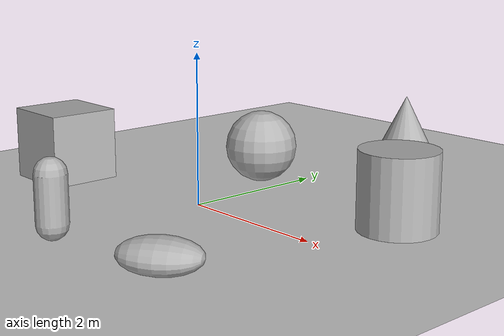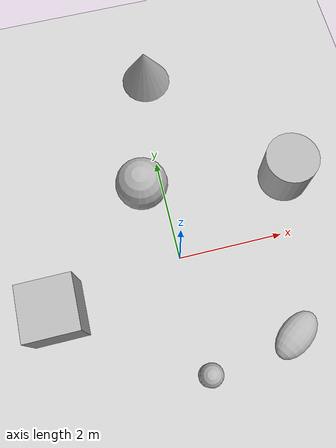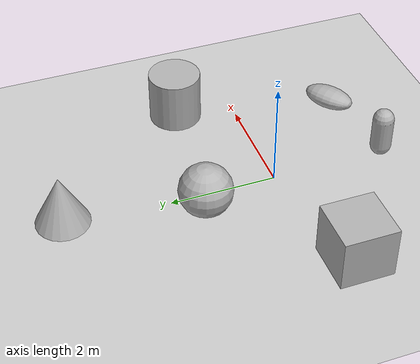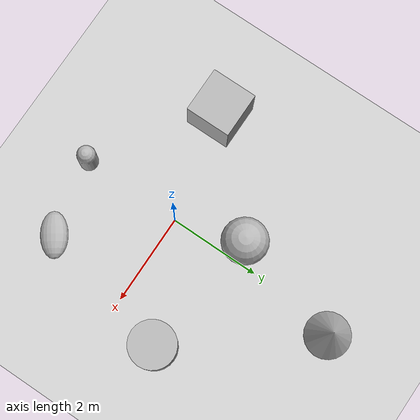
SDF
<sdf version='1.10'>
  <world name='empty'>
    <physics name='1ms' type='ignored'>
      <max_step_size>0.001</max_step_size>
      <real_time_factor>1</real_time_factor>
      <real_time_update_rate>1000</real_time_update_rate>
    </physics>
    <plugin name='gz::sim::systems::Physics' filename='gz-sim-physics-system'/>
    <plugin name='gz::sim::systems::UserCommands' filename='gz-sim-user-commands-system'/>
    <plugin name='gz::sim::systems::SceneBroadcaster' filename='gz-sim-scene-broadcaster-system'/>
    <plugin name='gz::sim::systems::Sensors' filename='gz-sim-sensors-system'>
      <render_engine>ogre2</render_engine>
    </plugin>
    <plugin name='gz::sim::systems::Contact' filename='gz-sim-contact-system'/>
    <gravity>0 0 -9.8000000000000007</gravity>
    <magnetic_field>5.5644999999999998e-06 2.2875799999999999e-05 -4.2388400000000002e-05</magnetic_field>
    <atmosphere type='adiabatic'/>
    <scene>
      <ambient>0.400000006 0.400000006 0.400000006 1</ambient>
      <background>0.699999988 0.699999988 0.699999988 1</background>
      <shadows>true</shadows>
    </scene>
    <model name='ground_plane'>
      <static>true</static>
      <link name='link'>
        <collision name='collision'>
          <geometry>
            <plane>
              <normal>0 0 1</normal>
              <size>100 100</size>
            </plane>
          </geometry>
          <surface>
            <friction>
              <ode/>
            </friction>
            <bounce/>
            <contact/>
          </surface>
        </collision>
        <visual name='visual'>
          <geometry>
            <plane>
              <normal>0 0 1</normal>
              <size>100 100</size>
            </plane>
          </geometry>
          <material>
            <ambient>0.800000012 0.800000012 0.800000012 1</ambient>
            <diffuse>0.800000012 0.800000012 0.800000012 1</diffuse>
            <specular>0.800000012 0.800000012 0.800000012 1</specular>
          </material>
        </visual>
        <pose>0 0 0 0 0 0</pose>
        <inertial>
          <pose>0 0 0 0 0 0</pose>
          <mass>1</mass>
          <inertia>
            <ixx>1</ixx>
            <ixy>0</ixy>
            <ixz>0</ixz>
            <iyy>1</iyy>
            <iyz>0</iyz>
            <izz>1</izz>
          </inertia>
        </inertial>
        <enable_wind>false</enable_wind>
      </link>
      <pose>0 0 0 0 0 0</pose>
      <self_collide>false</self_collide>
    </model>
    <model name='capsule'>
      <pose>-0.0041271904611277499 -2.1694230065101281 0.49999999980498194 0 0 0</pose>
      <link name='capsule_link'>
        <inertial>
          <inertia>
            <ixx>0.074153999999999998</ixx>
            <ixy>0</ixy>
            <ixz>0</ixz>
            <iyy>0.074153999999999998</iyy>
            <iyz>0</iyz>
            <izz>0.018769000000000001</izz>
          </inertia>
          <mass>1</mass>
          <pose>0 0 0 0 0 0</pose>
        </inertial>
        <collision name='capsule_collision'>
          <geometry>
            <capsule>
              <radius>0.20000000000000001</radius>
              <length>0.59999999999999998</length>
            </capsule>
          </geometry>
          <surface>
            <friction>
              <ode/>
            </friction>
            <bounce/>
            <contact/>
          </surface>
        </collision>
        <visual name='capsule_visual'>
          <geometry>
            <capsule>
              <radius>0.20000000000000001</radius>
              <length>0.59999999999999998</length>
            </capsule>
          </geometry>
          <material>
            <ambient>0.300000012 0.300000012 0.300000012 1</ambient>
            <diffuse>0.699999988 0.699999988 0.699999988 1</diffuse>
            <specular>1 1 1 1</specular>
          </material>
        </visual>
        <pose>0 0 0 0 0 0</pose>
        <enable_wind>false</enable_wind>
      </link>
      <static>false</static>
      <self_collide>false</self_collide>
    </model>
    <model name='cylinder'>
      <pose>2.4005820775685311 1.1257375281045505 0.49999943207967634 -1.9867500674197534e-19 -4.5045440641750823e-19 -2.8284491044901147e-20</pose>
      <link name='cylinder_link'>
        <inertial>
          <inertia>
            <ixx>0.14580000000000001</ixx>
            <ixy>0</ixy>
            <ixz>0</ixz>
            <iyy>0.14580000000000001</iyy>
            <iyz>0</iyz>
            <izz>0.125</izz>
          </inertia>
          <mass>1</mass>
          <pose>0 0 0 0 0 0</pose>
        </inertial>
        <collision name='cylinder_collision'>
          <geometry>
            <cylinder>
              <radius>0.5</radius>
              <length>1</length>
            </cylinder>
          </geometry>
          <surface>
            <friction>
              <ode/>
            </friction>
            <bounce/>
            <contact/>
          </surface>
        </collision>
        <visual name='cylinder_visual'>
          <geometry>
            <cylinder>
              <radius>0.5</radius>
              <length>1</length>
            </cylinder>
          </geometry>
          <material>
            <ambient>0.300000012 0.300000012 0.300000012 1</ambient>
            <diffuse>0.699999988 0.699999988 0.699999988 1</diffuse>
            <specular>1 1 1 1</specular>
          </material>
        </visual>
        <pose>0 0 0 0 0 0</pose>
        <enable_wind>false</enable_wind>
      </link>
      <static>false</static>
      <self_collide>false</self_collide>
    </model>
    <model name='ellipsoid'>
      <pose>1.674510288081507 -1.8750738892487175 0.18666845558252768 1.5707963117227564 -1.3774870921132962 -0.95274761359834337</pose>
      <link name='ellipsoid_link'>
        <inertial>
          <inertia>
            <ixx>0.068000000000000005</ixx>
            <ixy>0</ixy>
            <ixz>0</ixz>
            <iyy>0.058000000000000003</iyy>
            <iyz>0</iyz>
            <izz>0.025999999999999999</izz>
          </inertia>
          <mass>1</mass>
          <pose>0 0 0 0 0 0</pose>
        </inertial>
        <collision name='ellipsoid_collision'>
          <geometry>
            <ellipsoid>
              <radii>0.20000000000000001 0.29999999999999999 0.5</radii>
            </ellipsoid>
          </geometry>
          <surface>
            <friction>
              <ode/>
            </friction>
            <bounce/>
            <contact/>
          </surface>
        </collision>
        <visual name='ellipsoid_visual'>
          <geometry>
            <ellipsoid>
              <radii>0.20000000000000001 0.29999999999999999 0.5</radii>
            </ellipsoid>
          </geometry>
          <material>
            <ambient>0.300000012 0.300000012 0.300000012 1</ambient>
            <diffuse>0.699999988 0.699999988 0.699999988 1</diffuse>
            <specular>1 1 1 1</specular>
          </material>
        </visual>
        <pose>0 0 0 0 0 0</pose>
        <enable_wind>false</enable_wind>
      </link>
      <static>false</static>
      <self_collide>false</self_collide>
    </model>
    <model name='cone'>
      <pose>0.21438747007869097 3.9395734250977705 0.49999999992120586 2.2548609662481316e-12 -8.4123610005347741e-10 1.6328935230111422e-17</pose>
      <link name='cone_link'>
        <inertial>
          <inertia>
            <ixx>0.074999999999999997</ixx>
            <ixy>0</ixy>
            <ixz>0</ixz>
            <iyy>0.074999999999999997</iyy>
            <iyz>0</iyz>
            <izz>0.074999999999999997</izz>
          </inertia>
          <mass>1</mass>
          <pose>0 0 0 0 0 0</pose>
        </inertial>
        <collision name='cone_collision'>
          <geometry>
            <cone>
              <radius>0.5</radius>
              <length>1</length>
            </cone>
          </geometry>
          <surface>
            <friction>
              <ode/>
            </friction>
            <bounce/>
            <contact/>
          </surface>
        </collision>
        <visual name='cone_visual'>
          <geometry>
            <cone>
              <radius>0.5</radius>
              <length>1</length>
            </cone>
          </geometry>
          <material>
            <ambient>0.300000012 0.300000012 0.300000012 1</ambient>
            <diffuse>0.699999988 0.699999988 0.699999988 1</diffuse>
            <specular>1 1 1 1</specular>
          </material>
        </visual>
        <pose>0 0 0 0 0 0</pose>
        <enable_wind>false</enable_wind>
      </link>
      <static>false</static>
      <self_collide>false</self_collide>
    </model>
    <model name='sphere'>
      <pose>-0.390256243391784 1.4730873074004869 0.49999999980498194 0 0 0</pose>
      <link name='sphere_link'>
        <inertial>
          <inertia>
            <ixx>0.10000000000000001</ixx>
            <ixy>0</ixy>
            <ixz>0</ixz>
            <iyy>0.10000000000000001</iyy>
            <iyz>0</iyz>
            <izz>0.10000000000000001</izz>
          </inertia>
          <mass>1</mass>
          <pose>0 0 0 0 0 0</pose>
        </inertial>
        <collision name='sphere_collision'>
          <geometry>
            <sphere>
              <radius>0.5</radius>
            </sphere>
          </geometry>
          <surface>
            <friction>
              <ode/>
            </friction>
            <bounce/>
            <contact/>
          </surface>
        </collision>
        <visual name='sphere_visual'>
          <geometry>
            <sphere>
              <radius>0.5</radius>
            </sphere>
          </geometry>
          <material>
            <ambient>0.300000012 0.300000012 0.300000012 1</ambient>
            <diffuse>0.699999988 0.699999988 0.699999988 1</diffuse>
            <specular>1 1 1 1</specular>
          </material>
        </visual>
        <pose>0 0 0 0 0 0</pose>
        <enable_wind>false</enable_wind>
      </link>
      <static>false</static>
      <self_collide>false</self_collide>
    </model>
    <model name='box'>
      <pose>-2.4102623875492295 -0.48811236041115302 0.49999999980497606 1.0048033485058014e-21 -2.4640853465547739e-21 -3.9210766489770922e-22</pose>
      <link name='box_link'>
        <inertial>
          <inertia>
            <ixx>0.16666</ixx>
            <ixy>0</ixy>
            <ixz>0</ixz>
            <iyy>0.16666</iyy>
            <iyz>0</iyz>
            <izz>0.16666</izz>
          </inertia>
          <mass>1</mass>
          <pose>0 0 0 0 0 0</pose>
        </inertial>
        <collision name='box_collision'>
          <geometry>
            <box>
              <size>1 1 1</size>
            </box>
          </geometry>
          <surface>
            <friction>
              <ode/>
            </friction>
            <bounce/>
            <contact/>
          </surface>
        </collision>
        <visual name='box_visual'>
          <geometry>
            <box>
              <size>1 1 1</size>
            </box>
          </geometry>
          <material>
            <ambient>0.300000012 0.300000012 0.300000012 1</ambient>
            <diffuse>0.699999988 0.699999988 0.699999988 1</diffuse>
            <specular>1 1 1 1</specular>
          </material>
        </visual>
        <pose>0 0 0 0 0 0</pose>
        <enable_wind>false</enable_wind>
      </link>
      <static>false</static>
      <self_collide>false</self_collide>
    </model>
    <light name='sun' type='directional'>
      <pose>0 0 10 0 0 0</pose>
      <cast_shadows>true</cast_shadows>
      <intensity>1</intensity>
      <direction>-0.5 0.10000000000000001 -0.90000000000000002</direction>
      <diffuse>0.800000012 0.800000012 0.800000012 1</diffuse>
      <specular>0.200000003 0.200000003 0.200000003 1</specular>
      <attenuation>
        <range>1000</range>
        <linear>0.01</linear>
        <constant>0.90000000000000002</constant>
        <quadratic>0.001</quadratic>
      </attenuation>
      <spot>
        <inner_angle>0</inner_angle>
        <outer_angle>0</outer_angle>
        <falloff>0</falloff>
      </spot>
    </light>
  </world>
</sdf>
